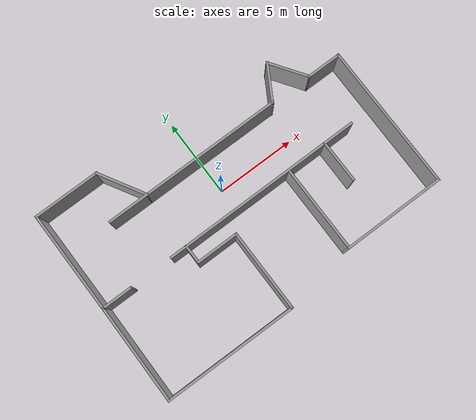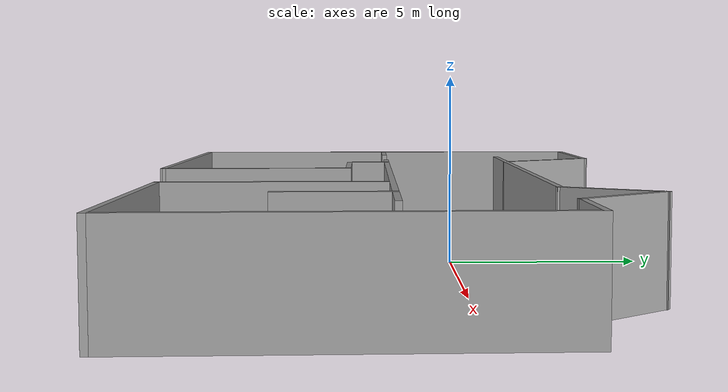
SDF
<?xml version='1.0'?>
<sdf version='1.7'>
  <model name='hab'>
    <pose>0.241305 -1.56265 0 0 -0 0</pose>
    <link name='Wall_0'>
      <collision name='Wall_0_Collision'>
        <geometry>
          <box>
            <size>12.75 0.15 2.5</size>
          </box>
        </geometry>
        <pose>0 0 1.25 0 -0 0</pose>
      </collision>
      <visual name='Wall_0_Visual'>
        <pose>0 0 1.25 0 -0 0</pose>
        <geometry>
          <box>
            <size>12.75 0.15 2.5</size>
          </box>
        </geometry>
        <material>
          <script>
            <uri>file://media/materials/scripts/gazebo.material</uri>
            <name>Gazebo/Grey</name>
          </script>
          <ambient>1 1 1 1</ambient>
        </material>
        <meta>
          <layer>0</layer>
        </meta>
      </visual>
      <pose>1.40569 -0.080347 0 0 -0 0</pose>
    </link>
    <link name='Wall_10'>
      <collision name='Wall_10_Collision'>
        <geometry>
          <box>
            <size>6.5 0.15 2.5</size>
          </box>
        </geometry>
        <pose>0 0 1.25 0 -0 0</pose>
      </collision>
      <visual name='Wall_10_Visual'>
        <pose>0 0 1.25 0 -0 0</pose>
        <geometry>
          <box>
            <size>6.5 0.15 2.5</size>
          </box>
        </geometry>
        <material>
          <script>
            <uri>file://media/materials/scripts/gazebo.material</uri>
            <name>Gazebo/Grey</name>
          </script>
          <ambient>1 1 1 1</ambient>
        </material>
        <meta>
          <layer>0</layer>
        </meta>
      </visual>
      <pose>6.42837 -5.57433 0 0 -0 3.14159</pose>
    </link>
    <link name='Wall_11'>
      <collision name='Wall_11_Collision'>
        <geometry>
          <box>
            <size>5.5 0.15 2.5</size>
          </box>
        </geometry>
        <pose>0 0 1.25 0 -0 0</pose>
      </collision>
      <visual name='Wall_11_Visual'>
        <pose>0 0 1.25 0 -0 0</pose>
        <geometry>
          <box>
            <size>5.5 0.15 2.5</size>
          </box>
        </geometry>
        <material>
          <script>
            <uri>file://media/materials/scripts/gazebo.material</uri>
            <name>Gazebo/Grey</name>
          </script>
          <ambient>1 1 1 1</ambient>
        </material>
        <meta>
          <layer>0</layer>
        </meta>
      </visual>
      <pose>3.25337 -2.89933 0 0 -0 1.5708</pose>
    </link>
    <link name='Wall_13'>
      <collision name='Wall_13_Collision'>
        <geometry>
          <box>
            <size>1.25 0.15 2.5</size>
          </box>
        </geometry>
        <pose>0 0 1.25 0 -0 0</pose>
      </collision>
      <visual name='Wall_13_Visual'>
        <pose>0 0 1.25 0 -0 0</pose>
        <geometry>
          <box>
            <size>1.25 0.15 2.5</size>
          </box>
        </geometry>
        <material>
          <script>
            <uri>file://media/materials/scripts/gazebo.material</uri>
            <name>Gazebo/Grey</name>
          </script>
          <ambient>1 1 1 1</ambient>
        </material>
        <meta>
          <layer>0</layer>
        </meta>
      </visual>
      <pose>-3.87825 -0.643615 0 0 -0 -1.5708</pose>
    </link>
    <link name='Wall_14'>
      <collision name='Wall_14_Collision'>
        <geometry>
          <box>
            <size>2.75 0.15 2.5</size>
          </box>
        </geometry>
        <pose>0 0 1.25 0 -0 0</pose>
      </collision>
      <visual name='Wall_14_Visual'>
        <pose>0 0 1.25 0 -0 0</pose>
        <geometry>
          <box>
            <size>2.75 0.15 2.5</size>
          </box>
        </geometry>
        <material>
          <script>
            <uri>file://media/materials/scripts/gazebo.material</uri>
            <name>Gazebo/Grey</name>
          </script>
          <ambient>1 1 1 1</ambient>
        </material>
        <meta>
          <layer>0</layer>
        </meta>
      </visual>
      <pose>-2.57825 -1.19362 0 0 -0 0</pose>
    </link>
    <link name='Wall_15'>
      <collision name='Wall_15_Collision'>
        <geometry>
          <box>
            <size>5.25 0.15 2.5</size>
          </box>
        </geometry>
        <pose>0 0 1.25 0 -0 0</pose>
      </collision>
      <visual name='Wall_15_Visual'>
        <pose>0 0 1.25 0 -0 0</pose>
        <geometry>
          <box>
            <size>5.25 0.15 2.5</size>
          </box>
        </geometry>
        <material>
          <script>
            <uri>file://media/materials/scripts/gazebo.material</uri>
            <name>Gazebo/Grey</name>
          </script>
          <ambient>1 1 1 1</ambient>
        </material>
        <meta>
          <layer>0</layer>
        </meta>
      </visual>
      <pose>-1.27825 -3.74362 0 0 -0 -1.5708</pose>
    </link>
    <link name='Wall_16'>
      <collision name='Wall_16_Collision'>
        <geometry>
          <box>
            <size>8.47491 0.15 2.5</size>
          </box>
        </geometry>
        <pose>0 0 1.25 0 -0 0</pose>
      </collision>
      <visual name='Wall_16_Visual'>
        <pose>0 0 1.25 0 -0 0</pose>
        <geometry>
          <box>
            <size>8.47491 0.15 2.5</size>
          </box>
        </geometry>
        <material>
          <script>
            <uri>file://media/materials/scripts/gazebo.material</uri>
            <name>Gazebo/Grey</name>
          </script>
          <ambient>1 1 1 1</ambient>
        </material>
        <meta>
          <layer>0</layer>
        </meta>
      </visual>
      <pose>-5.44053 -6.26818 0 0 -0 3.13548</pose>
    </link>
    <link name='Wall_17'>
      <collision name='Wall_17_Collision'>
        <geometry>
          <box>
            <size>6.29254 0.15 2.5</size>
          </box>
        </geometry>
        <pose>0 0 1.25 0 -0 0</pose>
      </collision>
      <visual name='Wall_17_Visual'>
        <pose>0 0 1.25 0 -0 0</pose>
        <geometry>
          <box>
            <size>6.29254 0.15 2.5</size>
          </box>
        </geometry>
        <material>
          <script>
            <uri>file://media/materials/scripts/gazebo.material</uri>
            <name>Gazebo/Grey</name>
          </script>
          <ambient>1 1 1 1</ambient>
        </material>
        <meta>
          <layer>0</layer>
        </meta>
      </visual>
      <pose>-9.58161 -3.16306 0 0 -0 1.56389</pose>
    </link>
    <link name='Wall_2'>
      <collision name='Wall_2_Collision'>
        <geometry>
          <box>
            <size>11.5 0.15 2.5</size>
          </box>
        </geometry>
        <pose>0 0 1.25 0 -0 0</pose>
      </collision>
      <visual name='Wall_2_Visual'>
        <pose>0 0 1.25 0 -0 0</pose>
        <geometry>
          <box>
            <size>11.5 0.15 2.5</size>
          </box>
        </geometry>
        <material>
          <script>
            <uri>file://media/materials/scripts/gazebo.material</uri>
            <name>Gazebo/Grey</name>
          </script>
          <ambient>1 1 1 1</ambient>
        </material>
        <meta>
          <layer>0</layer>
        </meta>
      </visual>
      <pose>-0.772986 3.57224 0 0 -0 0</pose>
    </link>
    <link name='Wall_22'>
      <collision name='Wall_22_Collision'>
        <geometry>
          <box>
            <size>2 0.15 2.5</size>
          </box>
        </geometry>
        <pose>0 0 1.25 0 -0 0</pose>
      </collision>
      <visual name='Wall_22_Visual'>
        <pose>0 0 1.25 0 -0 0</pose>
        <geometry>
          <box>
            <size>2 0.15 2.5</size>
          </box>
        </geometry>
        <material>
          <script>
            <uri>file://media/materials/scripts/gazebo.material</uri>
            <name>Gazebo/Grey</name>
          </script>
          <ambient>1 1 1 1</ambient>
        </material>
        <meta>
          <layer>0</layer>
        </meta>
      </visual>
      <pose>-8.63542 -0.083379 0 0 -0 0</pose>
    </link>
    <link name='Wall_24'>
      <collision name='Wall_24_Collision'>
        <geometry>
          <box>
            <size>6.5 0.15 2.5</size>
          </box>
        </geometry>
        <pose>0 0 1.25 0 -0 0</pose>
      </collision>
      <visual name='Wall_24_Visual'>
        <pose>0 0 1.25 0 -0 0</pose>
        <geometry>
          <box>
            <size>6.5 0.15 2.5</size>
          </box>
        </geometry>
        <material>
          <script>
            <uri>file://media/materials/scripts/gazebo.material</uri>
            <name>Gazebo/Grey</name>
          </script>
          <ambient>1 1 1 1</ambient>
        </material>
        <meta>
          <layer>0</layer>
        </meta>
      </visual>
      <pose>-9.56042 3.09162 0 0 -0 1.5708</pose>
    </link>
    <link name='Wall_25'>
      <collision name='Wall_25_Collision'>
        <geometry>
          <box>
            <size>4.25 0.15 2.5</size>
          </box>
        </geometry>
        <pose>0 0 1.25 0 -0 0</pose>
      </collision>
      <visual name='Wall_25_Visual'>
        <pose>0 0 1.25 0 -0 0</pose>
        <geometry>
          <box>
            <size>4.25 0.15 2.5</size>
          </box>
        </geometry>
        <material>
          <script>
            <uri>file://media/materials/scripts/gazebo.material</uri>
            <name>Gazebo/Grey</name>
          </script>
          <ambient>1 1 1 1</ambient>
        </material>
        <meta>
          <layer>0</layer>
        </meta>
      </visual>
      <pose>-7.51042 6.26662 0 0 -0 0</pose>
    </link>
    <link name='Wall_26'>
      <collision name='Wall_26_Collision'>
        <geometry>
          <box>
            <size>3.25 0.15 2.5</size>
          </box>
        </geometry>
        <pose>0 0 1.25 0 -0 0</pose>
      </collision>
      <visual name='Wall_26_Visual'>
        <pose>0 0 1.25 0 -0 0</pose>
        <geometry>
          <box>
            <size>3.25 0.15 2.5</size>
          </box>
        </geometry>
        <material>
          <script>
            <uri>file://media/materials/scripts/gazebo.material</uri>
            <name>Gazebo/Grey</name>
          </script>
          <ambient>1 1 1 1</ambient>
        </material>
        <meta>
          <layer>0</layer>
        </meta>
      </visual>
      <pose>-4.68541 4.92428 0 0 -0 -1.0472</pose>
    </link>
    <link name='Wall_28'>
      <collision name='Wall_28_Collision'>
        <geometry>
          <box>
            <size>2.5 0.15 2.5</size>
          </box>
        </geometry>
        <pose>0 0 1.25 0 -0 0</pose>
      </collision>
      <visual name='Wall_28_Visual'>
        <pose>0 0 1.25 0 -0 0</pose>
        <geometry>
          <box>
            <size>2.5 0.15 2.5</size>
          </box>
        </geometry>
        <material>
          <script>
            <uri>file://media/materials/scripts/gazebo.material</uri>
            <name>Gazebo/Grey</name>
          </script>
          <ambient>1 1 1 1</ambient>
        </material>
        <meta>
          <layer>0</layer>
        </meta>
      </visual>
      <pose>5.48951 4.58982 0 0 -0 1.0472</pose>
    </link>
    <link name='Wall_29'>
      <collision name='Wall_29_Collision'>
        <geometry>
          <box>
            <size>2.6735 0.15 2.5</size>
          </box>
        </geometry>
        <pose>0 0 1.25 0 -0 0</pose>
      </collision>
      <visual name='Wall_29_Visual'>
        <pose>0 0 1.25 0 -0 0</pose>
        <geometry>
          <box>
            <size>2.6735 0.15 2.5</size>
          </box>
        </geometry>
        <material>
          <script>
            <uri>file://media/materials/scripts/gazebo.material</uri>
            <name>Gazebo/Grey</name>
          </script>
          <ambient>1 1 1 1</ambient>
        </material>
        <meta>
          <layer>0</layer>
        </meta>
      </visual>
      <pose>6.79019 4.56654 0 0 -0 -0.970087</pose>
    </link>
    <link name='Wall_4'>
      <collision name='Wall_4_Collision'>
        <geometry>
          <box>
            <size>2.25 0.15 2.5</size>
          </box>
        </geometry>
        <pose>0 0 1.25 0 -0 0</pose>
      </collision>
      <visual name='Wall_4_Visual'>
        <pose>0 0 1.25 0 -0 0</pose>
        <geometry>
          <box>
            <size>2.25 0.15 2.5</size>
          </box>
        </geometry>
        <material>
          <script>
            <uri>file://media/materials/scripts/gazebo.material</uri>
            <name>Gazebo/Grey</name>
          </script>
          <ambient>1 1 1 1</ambient>
        </material>
        <meta>
          <layer>0</layer>
        </meta>
      </visual>
      <pose>8.55337 3.52567 0 0 -0 0</pose>
    </link>
    <link name='Wall_6'>
      <collision name='Wall_6_Collision'>
        <geometry>
          <box>
            <size>2.75 0.15 2.5</size>
          </box>
        </geometry>
        <pose>0 0 1.25 0 -0 0</pose>
      </collision>
      <visual name='Wall_6_Visual'>
        <pose>0 0 1.25 0 -0 0</pose>
        <geometry>
          <box>
            <size>2.75 0.15 2.5</size>
          </box>
        </geometry>
        <material>
          <script>
            <uri>file://media/materials/scripts/gazebo.material</uri>
            <name>Gazebo/Grey</name>
          </script>
          <ambient>1 1 1 1</ambient>
        </material>
        <meta>
          <layer>0</layer>
        </meta>
      </visual>
      <pose>5.81077 -1.38111 0 0 -0 -1.5708</pose>
    </link>
    <link name='Wall_8'>
      <collision name='Wall_8_Collision'>
        <geometry>
          <box>
            <size>9.25 0.15 2.5</size>
          </box>
        </geometry>
        <pose>0 0 1.25 0 -0 0</pose>
      </collision>
      <visual name='Wall_8_Visual'>
        <pose>0 0 1.25 0 -0 0</pose>
        <geometry>
          <box>
            <size>9.25 0.15 2.5</size>
          </box>
        </geometry>
        <material>
          <script>
            <uri>file://media/materials/scripts/gazebo.material</uri>
            <name>Gazebo/Grey</name>
          </script>
          <ambient>1 1 1 1</ambient>
        </material>
        <meta>
          <layer>0</layer>
        </meta>
      </visual>
      <pose>9.60337 -1.02433 0 0 -0 -1.5708</pose>
    </link>
    <static>1</static>
  </model>
</sdf>
